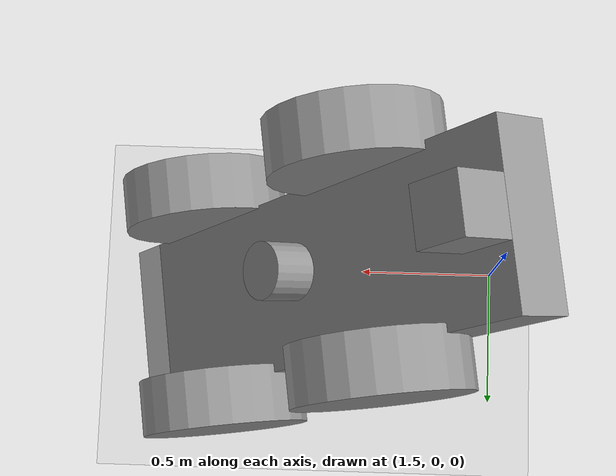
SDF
<sdf version="1.7">
 <world name="default">
  <model name="ground_plane">
   <static>1</static>
   <link name="link">
    <collision name="collision">
     <geometry><plane><normal>0 0 1</normal><size>100 100</size></plane></geometry>
     <surface>
      <contact><collide_bitmask>65535</collide_bitmask></contact>
      <friction><ode><mu>100</mu><mu2>50</mu2></ode></friction>
     </surface>
    </collision>
    <visual name="visual">
     <cast_shadows>0</cast_shadows>
     <geometry><plane><normal>0 0 1</normal><size>100 100</size></plane></geometry>
     <material>
      <script><uri>file://media/materials/scripts/gazebo.material</uri><name>Gazebo/Grey</name></script>
     </material>
    </visual>
   </link>
  </model>
  <model name="myRobot">
   <link name="link_0">
    <inertial>
     <mass>1</mass>
     <inertia><ixx>0.145833</ixx><ixy>0</ixy><ixz>0</ixz><iyy>0.145833</iyy><iyz>0</iyz><izz>0.125</izz></inertia>
    </inertial>
    <pose>1.34607 -0.296749 -0.06 1.5705 -0 0</pose>
    <visual name="visual">
     <geometry><cylinder><radius>0.3</radius><length>0.2</length></cylinder></geometry>
     <material>
      <lighting>1</lighting>
      <script><uri>file://media/materials/scripts/gazebo.material</uri><name>Gazebo/Grey</name></script>
      <shader type="pixel"><normal_map>__default__</normal_map></shader>
      <ambient>0.3 0.3 0.3 1</ambient>
      <diffuse>0.7 0.7 0.7 1</diffuse>
      <specular>0.01 0.01 0.01 1</specular>
      <emissive>0 0 0 1</emissive>
     </material>
    </visual>
    <collision name="collision">
     <geometry><cylinder><radius>0.3</radius><length>0.2</length></cylinder></geometry>
     <surface>
      <friction>
       <ode><mu>1</mu><mu2>1</mu2><fdir1>0 0 0</fdir1><slip1>0</slip1><slip2>0</slip2></ode>
       <torsional>
        <coefficient>1</coefficient>
        <patch_radius>0</patch_radius>
        <surface_radius>0</surface_radius>
        <use_patch_radius>1</use_patch_radius>
        <ode><slip>0</slip></ode>
       </torsional>
      </friction>
      <bounce><restitution_coefficient>0</restitution_coefficient><threshold>1e+06</threshold></bounce>
      <contact>
       <collide_without_contact>0</collide_without_contact>
       <collide_without_contact_bitmask>1</collide_without_contact_bitmask>
       <collide_bitmask>1</collide_bitmask>
       <ode>
        <soft_cfm>0</soft_cfm>
        <soft_erp>0.2</soft_erp>
        <kp>1e+13</kp>
        <kd>1</kd>
        <max_vel>0.01</max_vel>
        <min_depth>0</min_depth>
       </ode>
       <bullet>
        <split_impulse>1</split_impulse>
        <split_impulse_penetration_threshold>-0.01</split_impulse_penetration_threshold>
        <soft_cfm>0</soft_cfm>
        <soft_erp>0.2</soft_erp>
        <kp>1e+13</kp>
        <kd>1</kd>
       </bullet>
      </contact>
     </surface>
    </collision>
   </link>
   <link name="link_0_clone">
    <inertial>
     <mass>1</mass>
     <inertia><ixx>0.145833</ixx><ixy>0</ixy><ixz>0</ixz><iyy>0.145833</iyy><iyz>0</iyz><izz>0.125</izz></inertia>
    </inertial>
    <pose>0.476071 -1.03675 -0.06 1.5705 -0 0</pose>
    <visual name="visual">
     <geometry><cylinder><radius>0.3</radius><length>0.2</length></cylinder></geometry>
     <material>
      <lighting>1</lighting>
      <script><uri>file://media/materials/scripts/gazebo.material</uri><name>Gazebo/Grey</name></script>
      <shader type="pixel"><normal_map>__default__</normal_map></shader>
      <ambient>0.3 0.3 0.3 1</ambient>
      <diffuse>0.7 0.7 0.7 1</diffuse>
      <specular>0.01 0.01 0.01 1</specular>
      <emissive>0 0 0 1</emissive>
     </material>
    </visual>
    <collision name="collision">
     <geometry><cylinder><radius>0.3</radius><length>0.2</length></cylinder></geometry>
     <surface>
      <friction>
       <ode><mu>1</mu><mu2>1</mu2><fdir1>0 0 0</fdir1><slip1>0</slip1><slip2>0</slip2></ode>
       <torsional>
        <coefficient>1</coefficient>
        <patch_radius>0</patch_radius>
        <surface_radius>0</surface_radius>
        <use_patch_radius>1</use_patch_radius>
        <ode><slip>0</slip></ode>
       </torsional>
      </friction>
      <bounce><restitution_coefficient>0</restitution_coefficient><threshold>1e+06</threshold></bounce>
      <contact>
       <collide_without_contact>0</collide_without_contact>
       <collide_without_contact_bitmask>1</collide_without_contact_bitmask>
       <collide_bitmask>1</collide_bitmask>
       <ode>
        <soft_cfm>0</soft_cfm>
        <soft_erp>0.2</soft_erp>
        <kp>1e+13</kp>
        <kd>1</kd>
        <max_vel>0.01</max_vel>
        <min_depth>0</min_depth>
       </ode>
       <bullet>
        <split_impulse>1</split_impulse>
        <split_impulse_penetration_threshold>-0.01</split_impulse_penetration_threshold>
        <soft_cfm>0</soft_cfm>
        <soft_erp>0.2</soft_erp>
        <kp>1e+13</kp>
        <kd>1</kd>
       </bullet>
      </contact>
     </surface>
    </collision>
   </link>
   <link name="link_0_clone_0">
    <inertial>
     <mass>1</mass>
     <inertia><ixx>0.145833</ixx><ixy>0</ixy><ixz>0</ixz><iyy>0.145833</iyy><iyz>0</iyz><izz>0.125</izz></inertia>
    </inertial>
    <pose>0.476071 -0.296749 -0.06 1.5705 -0 0</pose>
    <visual name="visual">
     <geometry><cylinder><radius>0.3</radius><length>0.2</length></cylinder></geometry>
     <material>
      <lighting>1</lighting>
      <script><uri>file://media/materials/scripts/gazebo.material</uri><name>Gazebo/Grey</name></script>
      <shader type="pixel"><normal_map>__default__</normal_map></shader>
      <ambient>0.3 0.3 0.3 1</ambient>
      <diffuse>0.7 0.7 0.7 1</diffuse>
      <specular>0.01 0.01 0.01 1</specular>
      <emissive>0 0 0 1</emissive>
     </material>
    </visual>
    <collision name="collision">
     <geometry><cylinder><radius>0.3</radius><length>0.2</length></cylinder></geometry>
     <surface>
      <friction>
       <ode><mu>1</mu><mu2>1</mu2><fdir1>0 0 0</fdir1><slip1>0</slip1><slip2>0</slip2></ode>
       <torsional>
        <coefficient>1</coefficient>
        <patch_radius>0</patch_radius>
        <surface_radius>0</surface_radius>
        <use_patch_radius>1</use_patch_radius>
        <ode><slip>0</slip></ode>
       </torsional>
      </friction>
      <bounce><restitution_coefficient>0</restitution_coefficient><threshold>1e+06</threshold></bounce>
      <contact>
       <collide_without_contact>0</collide_without_contact>
       <collide_without_contact_bitmask>1</collide_without_contact_bitmask>
       <collide_bitmask>1</collide_bitmask>
       <ode>
        <soft_cfm>0</soft_cfm>
        <soft_erp>0.2</soft_erp>
        <kp>1e+13</kp>
        <kd>1</kd>
        <max_vel>0.01</max_vel>
        <min_depth>0</min_depth>
       </ode>
       <bullet>
        <split_impulse>1</split_impulse>
        <split_impulse_penetration_threshold>-0.01</split_impulse_penetration_threshold>
        <soft_cfm>0</soft_cfm>
        <soft_erp>0.2</soft_erp>
        <kp>1e+13</kp>
        <kd>1</kd>
       </bullet>
      </contact>
     </surface>
    </collision>
   </link>
   <link name="link_0_clone_1">
    <inertial>
     <mass>1</mass>
     <inertia><ixx>0.145833</ixx><ixy>0</ixy><ixz>0</ixz><iyy>0.145833</iyy><iyz>0</iyz><izz>0.125</izz></inertia>
    </inertial>
    <pose>1.345 -1.05675 -0.06 1.5705 -0 0</pose>
    <visual name="visual">
     <geometry><cylinder><radius>0.3</radius><length>0.2</length></cylinder></geometry>
     <material>
      <lighting>1</lighting>
      <script><uri>file://media/materials/scripts/gazebo.material</uri><name>Gazebo/Grey</name></script>
      <shader type="pixel"><normal_map>__default__</normal_map></shader>
      <ambient>0.3 0.3 0.3 1</ambient>
      <diffuse>0.7 0.7 0.7 1</diffuse>
      <specular>0.01 0.01 0.01 1</specular>
      <emissive>0 0 0 1</emissive>
     </material>
    </visual>
    <collision name="collision">
     <geometry><cylinder><radius>0.3</radius><length>0.2</length></cylinder></geometry>
     <surface>
      <friction>
       <ode><mu>1</mu><mu2>1</mu2><fdir1>0 0 0</fdir1><slip1>0</slip1><slip2>0</slip2></ode>
       <torsional>
        <coefficient>1</coefficient>
        <patch_radius>0</patch_radius>
        <surface_radius>0</surface_radius>
        <use_patch_radius>1</use_patch_radius>
        <ode><slip>0</slip></ode>
       </torsional>
      </friction>
      <bounce><restitution_coefficient>0</restitution_coefficient><threshold>1e+06</threshold></bounce>
      <contact>
       <collide_without_contact>0</collide_without_contact>
       <collide_without_contact_bitmask>1</collide_without_contact_bitmask>
       <collide_bitmask>1</collide_bitmask>
       <ode>
        <soft_cfm>0</soft_cfm>
        <soft_erp>0.2</soft_erp>
        <kp>1e+13</kp>
        <kd>1</kd>
        <max_vel>0.01</max_vel>
        <min_depth>0</min_depth>
       </ode>
       <bullet>
        <split_impulse>1</split_impulse>
        <split_impulse_penetration_threshold>-0.01</split_impulse_penetration_threshold>
        <soft_cfm>0</soft_cfm>
        <soft_erp>0.2</soft_erp>
        <kp>1e+13</kp>
        <kd>1</kd>
       </bullet>
      </contact>
     </surface>
    </collision>
   </link>
   <link name="link_2">
    <inertial>
     <mass>1</mass>
     <inertia>
      <ixx>0.166667</ixx>
      <ixy>0</ixy>
      <ixz>0</ixz>
      <iyy>0.166667</iyy>
      <iyz>0</iyz>
      <izz>0.166667</izz>
     </inertia>
    </inertial>
    <pose>0.876071 -0.666749 -0.18 0 -0 0</pose>
    <visual name="visual">
     <geometry><box><size>2 0.6 0.2</size></box></geometry>
     <material>
      <lighting>1</lighting>
      <script><uri>file://media/materials/scripts/gazebo.material</uri><name>Gazebo/Grey</name></script>
      <shader type="pixel"><normal_map>__default__</normal_map></shader>
      <ambient>0.3 0.3 0.3 1</ambient>
      <diffuse>0.7 0.7 0.7 1</diffuse>
      <specular>0.01 0.01 0.01 1</specular>
      <emissive>0 0 0 1</emissive>
     </material>
    </visual>
    <collision name="collision">
     <geometry><box><size>2 0.6 0.2</size></box></geometry>
     <surface>
      <friction>
       <ode><mu>1</mu><mu2>1</mu2><fdir1>0 0 0</fdir1><slip1>0</slip1><slip2>0</slip2></ode>
       <torsional>
        <coefficient>1</coefficient>
        <patch_radius>0</patch_radius>
        <surface_radius>0</surface_radius>
        <use_patch_radius>1</use_patch_radius>
        <ode><slip>0</slip></ode>
       </torsional>
      </friction>
      <bounce><restitution_coefficient>0</restitution_coefficient><threshold>1e+06</threshold></bounce>
      <contact>
       <collide_without_contact>0</collide_without_contact>
       <collide_without_contact_bitmask>1</collide_without_contact_bitmask>
       <collide_bitmask>1</collide_bitmask>
       <ode>
        <soft_cfm>0</soft_cfm>
        <soft_erp>0.2</soft_erp>
        <kp>1e+13</kp>
        <kd>1</kd>
        <max_vel>0.01</max_vel>
        <min_depth>0</min_depth>
       </ode>
       <bullet>
        <split_impulse>1</split_impulse>
        <split_impulse_penetration_threshold>-0.01</split_impulse_penetration_threshold>
        <soft_cfm>0</soft_cfm>
        <soft_erp>0.2</soft_erp>
        <kp>1e+13</kp>
        <kd>1</kd>
       </bullet>
      </contact>
     </surface>
    </collision>
   </link>
   <link name="link_3">
    <inertial>
     <mass>1</mass>
     <inertia>
      <ixx>0.166667</ixx>
      <ixy>0</ixy>
      <ixz>0</ixz>
      <iyy>0.166667</iyy>
      <iyz>0</iyz>
      <izz>0.166667</izz>
     </inertia>
    </inertial>
    <pose>-0.023929 -0.686749 0.01 0 -0 0</pose>
    <visual name="visual">
     <geometry><box><size>0.2 0.2 0.2</size></box></geometry>
     <material>
      <lighting>1</lighting>
      <script><uri>file://media/materials/scripts/gazebo.material</uri><name>Gazebo/Grey</name></script>
      <shader type="pixel"><normal_map>__default__</normal_map></shader>
      <ambient>0.3 0.3 0.3 1</ambient>
      <diffuse>0.7 0.7 0.7 1</diffuse>
      <specular>0.01 0.01 0.01 1</specular>
      <emissive>0 0 0 1</emissive>
     </material>
    </visual>
    <collision name="collision">
     <geometry><box><size>0.2 0.2 0.2</size></box></geometry>
     <surface>
      <friction>
       <ode><mu>1</mu><mu2>1</mu2><fdir1>0 0 0</fdir1><slip1>0</slip1><slip2>0</slip2></ode>
       <torsional>
        <coefficient>1</coefficient>
        <patch_radius>0</patch_radius>
        <surface_radius>0</surface_radius>
        <use_patch_radius>1</use_patch_radius>
        <ode><slip>0</slip></ode>
       </torsional>
      </friction>
      <bounce><restitution_coefficient>0</restitution_coefficient><threshold>1e+06</threshold></bounce>
      <contact>
       <collide_without_contact>0</collide_without_contact>
       <collide_without_contact_bitmask>1</collide_without_contact_bitmask>
       <collide_bitmask>1</collide_bitmask>
       <ode>
        <soft_cfm>0</soft_cfm>
        <soft_erp>0.2</soft_erp>
        <kp>1e+13</kp>
        <kd>1</kd>
        <max_vel>0.01</max_vel>
        <min_depth>0</min_depth>
       </ode>
       <bullet>
        <split_impulse>1</split_impulse>
        <split_impulse_penetration_threshold>-0.01</split_impulse_penetration_threshold>
        <soft_cfm>0</soft_cfm>
        <soft_erp>0.2</soft_erp>
        <kp>1e+13</kp>
        <kd>1</kd>
       </bullet>
      </contact>
     </surface>
    </collision>
   </link>
   <link name="link_4">
    <inertial>
     <mass>1</mass>
     <inertia><ixx>0.145833</ixx><ixy>0</ixy><ixz>0</ixz><iyy>0.145833</iyy><iyz>0</iyz><izz>0.125</izz></inertia>
    </inertial>
    <pose>0.856071 -0.686749 0.01 0 -0 0</pose>
    <visual name="visual">
     <geometry><cylinder><radius>0.1</radius><length>0.15</length></cylinder></geometry>
     <material>
      <lighting>1</lighting>
      <script><uri>file://media/materials/scripts/gazebo.material</uri><name>Gazebo/Grey</name></script>
      <shader type="pixel"><normal_map>__default__</normal_map></shader>
      <ambient>0.3 0.3 0.3 1</ambient>
      <diffuse>0.7 0.7 0.7 1</diffuse>
      <specular>0.01 0.01 0.01 1</specular>
      <emissive>0 0 0 1</emissive>
     </material>
    </visual>
    <collision name="collision">
     <geometry><cylinder><radius>0.1</radius><length>0.15</length></cylinder></geometry>
     <surface>
      <friction>
       <ode><mu>1</mu><mu2>1</mu2><fdir1>0 0 0</fdir1><slip1>0</slip1><slip2>0</slip2></ode>
       <torsional>
        <coefficient>1</coefficient>
        <patch_radius>0</patch_radius>
        <surface_radius>0</surface_radius>
        <use_patch_radius>1</use_patch_radius>
        <ode><slip>0</slip></ode>
       </torsional>
      </friction>
      <bounce><restitution_coefficient>0</restitution_coefficient><threshold>1e+06</threshold></bounce>
      <contact>
       <collide_without_contact>0</collide_without_contact>
       <collide_without_contact_bitmask>1</collide_without_contact_bitmask>
       <collide_bitmask>1</collide_bitmask>
       <ode>
        <soft_cfm>0</soft_cfm>
        <soft_erp>0.2</soft_erp>
        <kp>1e+13</kp>
        <kd>1</kd>
        <max_vel>0.01</max_vel>
        <min_depth>0</min_depth>
       </ode>
       <bullet>
        <split_impulse>1</split_impulse>
        <split_impulse_penetration_threshold>-0.01</split_impulse_penetration_threshold>
        <soft_cfm>0</soft_cfm>
        <soft_erp>0.2</soft_erp>
        <kp>1e+13</kp>
        <kd>1</kd>
       </bullet>
      </contact>
     </surface>
    </collision>
   </link>
   <joint name="link_2_JOINT_0" type="revolute">
    <parent>link_2</parent>
    <child>link_0_clone_1</child>
    <axis>
     <xyz>0 0 1</xyz>
     <limit>
      <lower>-1.79769e+308</lower>
      <upper>1.79769e+308</upper>
      <effort>-1</effort>
      <velocity>-1</velocity>
     </limit>
     <dynamics>
      <spring_reference>0</spring_reference>
      <spring_stiffness>0</spring_stiffness>
      <damping>0</damping>
     </dynamics>
    </axis>
    <physics>
     <ode><limit><cfm>0</cfm><erp>0.2</erp></limit><suspension><cfm>0</cfm><erp>0.2</erp></suspension></ode>
    </physics>
   </joint>
   <joint name="link_2_JOINT_1" type="revolute">
    <parent>link_2</parent>
    <child>link_0_clone</child>
    <axis>
     <xyz>0 0 1</xyz>
     <limit>
      <lower>-1.79769e+308</lower>
      <upper>1.79769e+308</upper>
      <effort>-1</effort>
      <velocity>-1</velocity>
     </limit>
     <dynamics>
      <spring_reference>0</spring_reference>
      <spring_stiffness>0</spring_stiffness>
      <damping>0</damping>
     </dynamics>
    </axis>
    <physics>
     <ode><limit><cfm>0</cfm><erp>0.2</erp></limit><suspension><cfm>0</cfm><erp>0.2</erp></suspension></ode>
    </physics>
   </joint>
   <joint name="link_2_JOINT_2" type="revolute">
    <parent>link_2</parent>
    <child>link_0</child>
    <axis>
     <xyz>0 0 1</xyz>
     <limit>
      <lower>-1.79769e+308</lower>
      <upper>1.79769e+308</upper>
      <effort>-1</effort>
      <velocity>-1</velocity>
     </limit>
     <dynamics>
      <spring_reference>0</spring_reference>
      <spring_stiffness>0</spring_stiffness>
      <damping>0</damping>
     </dynamics>
    </axis>
    <physics>
     <ode><limit><cfm>0</cfm><erp>0.2</erp></limit><suspension><cfm>0</cfm><erp>0.2</erp></suspension></ode>
    </physics>
   </joint>
   <joint name="link_2_JOINT_4" type="revolute">
    <parent>link_2</parent>
    <child>link_0_clone_0</child>
    <axis>
     <xyz>0 0 1</xyz>
     <limit>
      <lower>-1.79769e+308</lower>
      <upper>1.79769e+308</upper>
      <effort>-1</effort>
      <velocity>-1</velocity>
     </limit>
     <dynamics>
      <spring_reference>0</spring_reference>
      <spring_stiffness>0</spring_stiffness>
      <damping>0</damping>
     </dynamics>
    </axis>
    <physics>
     <ode><limit><cfm>0</cfm><erp>0.2</erp></limit><suspension><cfm>0</cfm><erp>0.2</erp></suspension></ode>
    </physics>
   </joint>
   <joint name="link_2_JOINT_5" type="fixed">
    <parent>link_2</parent>
    <child>link_3</child>
    <physics>
     <ode><limit><cfm>0</cfm><erp>0.2</erp></limit><suspension><cfm>0</cfm><erp>0.2</erp></suspension></ode>
    </physics>
   </joint>
   <joint name="link_2_JOINT_6" type="revolute">
    <parent>link_2</parent>
    <child>link_4</child>
    <axis>
     <xyz>1 0 0</xyz>
     <limit>
      <lower>-1.79769e+308</lower>
      <upper>1.79769e+308</upper>
      <effort>-1</effort>
      <velocity>-1</velocity>
     </limit>
     <dynamics>
      <spring_reference>0</spring_reference>
      <spring_stiffness>0</spring_stiffness>
      <damping>0</damping>
     </dynamics>
    </axis>
    <physics>
     <ode><limit><cfm>0</cfm><erp>0.2</erp></limit><suspension><cfm>0</cfm><erp>0.2</erp></suspension></ode>
    </physics>
   </joint>
   <static>0</static>
   <pose>1.67746 0.738641 1.38766 -0.000176 0.894892 0.134506</pose>
  </model>
 </world>
</sdf>
